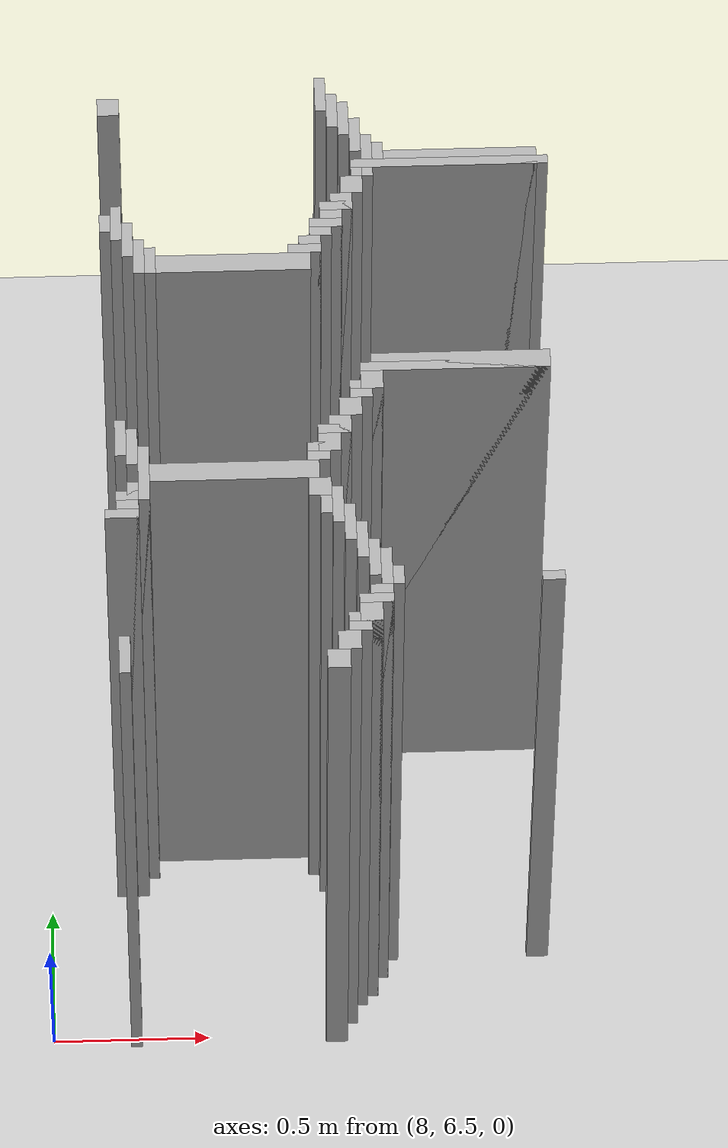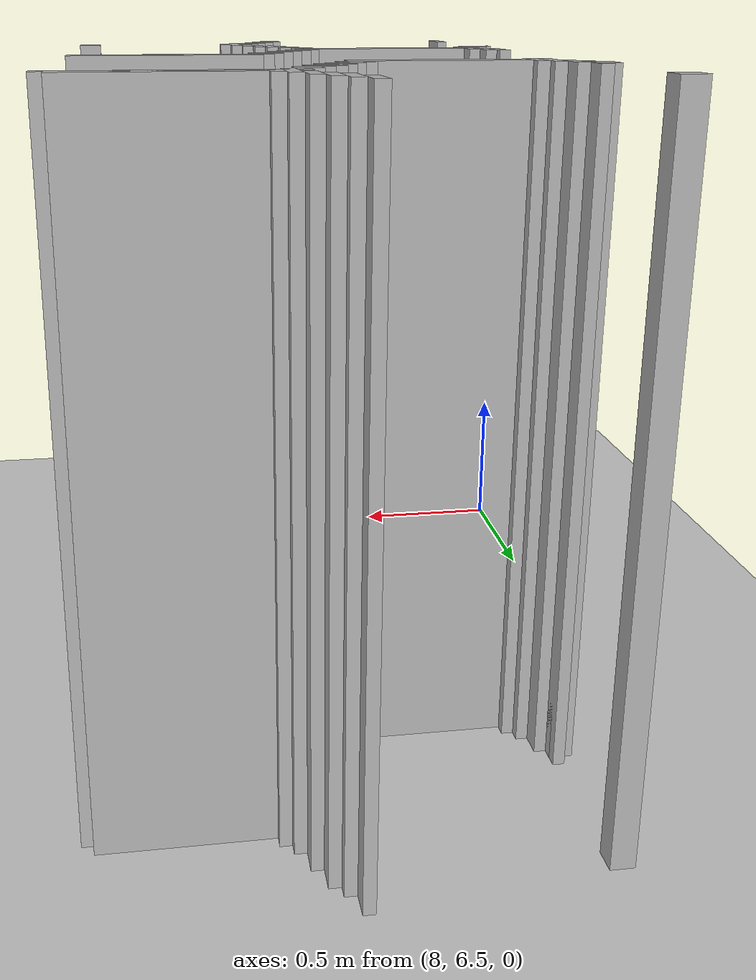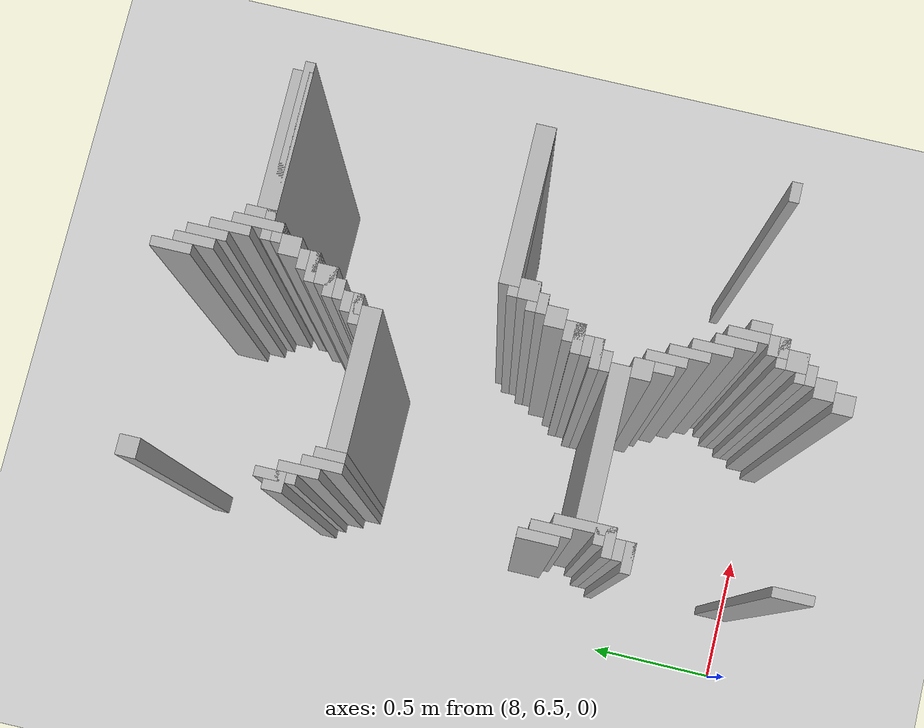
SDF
<sdf version="1.6">
 <world name="slam_world">
  <model name="ground_plane">
   <static>true</static>
   <link name="link">
    <collision name="collision">
     <geometry><plane><normal>0 0 1</normal><size>100 100</size></plane></geometry>
    </collision>
    <visual name="visual">
     <geometry><plane><normal>0 0 1</normal><size>100 100</size></plane></geometry>
     <material>
      <ambient>0.8 0.8 0.8 1</ambient>
      <diffuse>0.8 0.8 0.8 1</diffuse>
      <specular>0.8 0.8 0.8 1</specular>
     </material>
    </visual>
   </link>
  </model>
  <model name="wall_2867">
   <static>true</static>
   <pose>8.92691415313225 8.77030162412993 1.0 0 0 0</pose>
   <link name="link">
    <collision name="collision">
     <geometry><box><size>0.03480278422273782 0.13921113689095127 2.0</size></box></geometry>
    </collision>
    <visual name="visual">
     <geometry><box><size>0.03480278422273782 0.13921113689095127 2.0</size></box></geometry>
     <material><ambient>0.5 0.5 0.5 1</ambient><diffuse>0.7 0.7 0.7 1</diffuse></material>
    </visual>
   </link>
  </model>
  <model name="wall_2881">
   <static>true</static>
   <pose>8.248259860788863 8.735498839907192 1.0 0 0 0</pose>
   <link name="link">
    <collision name="collision">
     <geometry><box><size>0.06960556844547564 0.06960556844547564 2.0</size></box></geometry>
    </collision>
    <visual name="visual">
     <geometry><box><size>0.06960556844547564 0.06960556844547564 2.0</size></box></geometry>
     <material><ambient>0.5 0.5 0.5 1</ambient><diffuse>0.7 0.7 0.7 1</diffuse></material>
    </visual>
   </link>
  </model>
  <model name="wall_2882">
   <static>true</static>
   <pose>8.961716937354987 8.700696055684455 1.0 0 0 0</pose>
   <link name="link">
    <collision name="collision">
     <geometry><box><size>0.03480278422273782 0.13921113689095127 2.0</size></box></geometry>
    </collision>
    <visual name="visual">
     <geometry><box><size>0.03480278422273782 0.13921113689095127 2.0</size></box></geometry>
     <material><ambient>0.5 0.5 0.5 1</ambient><diffuse>0.7 0.7 0.7 1</diffuse></material>
    </visual>
   </link>
  </model>
  <model name="wall_2897">
   <static>true</static>
   <pose>8.996519721577727 8.665893271461716 1.0 0 0 0</pose>
   <link name="link">
    <collision name="collision">
     <geometry><box><size>0.03480278422273782 0.13921113689095127 2.0</size></box></geometry>
    </collision>
    <visual name="visual">
     <geometry><box><size>0.03480278422273782 0.13921113689095127 2.0</size></box></geometry>
     <material><ambient>0.5 0.5 0.5 1</ambient><diffuse>0.7 0.7 0.7 1</diffuse></material>
    </visual>
   </link>
  </model>
  <model name="wall_2923">
   <static>true</static>
   <pose>9.031322505800464 8.596287703016241 1.0 0 0 0</pose>
   <link name="link">
    <collision name="collision">
     <geometry><box><size>0.03480278422273782 0.13921113689095127 2.0</size></box></geometry>
    </collision>
    <visual name="visual">
     <geometry><box><size>0.03480278422273782 0.13921113689095127 2.0</size></box></geometry>
     <material><ambient>0.5 0.5 0.5 1</ambient><diffuse>0.7 0.7 0.7 1</diffuse></material>
    </visual>
   </link>
  </model>
  <model name="wall_2944">
   <static>true</static>
   <pose>9.066125290023201 8.509280742459396 1.0 0 0 0</pose>
   <link name="link">
    <collision name="collision">
     <geometry><box><size>0.03480278422273782 0.17401392111368907 2.0</size></box></geometry>
    </collision>
    <visual name="visual">
     <geometry><box><size>0.03480278422273782 0.17401392111368907 2.0</size></box></geometry>
     <material><ambient>0.5 0.5 0.5 1</ambient><diffuse>0.7 0.7 0.7 1</diffuse></material>
    </visual>
   </link>
  </model>
  <model name="wall_2959">
   <static>true</static>
   <pose>9.100928074245939 8.509280742459396 1.0 0 0 0</pose>
   <link name="link">
    <collision name="collision">
     <geometry><box><size>0.03480278422273782 0.10440835266821345 2.0</size></box></geometry>
    </collision>
    <visual name="visual">
     <geometry><box><size>0.03480278422273782 0.10440835266821345 2.0</size></box></geometry>
     <material><ambient>0.5 0.5 0.5 1</ambient><diffuse>0.7 0.7 0.7 1</diffuse></material>
    </visual>
   </link>
  </model>
  <model name="wall_2971">
   <static>true</static>
   <pose>9.361948955916473 8.491879350348027 1.0 0 0 0</pose>
   <link name="link">
    <collision name="collision">
     <geometry><box><size>0.4872389791183295 0.06960556844547564 2.0</size></box></geometry>
    </collision>
    <visual name="visual">
     <geometry><box><size>0.4872389791183295 0.06960556844547564 2.0</size></box></geometry>
     <material><ambient>0.5 0.5 0.5 1</ambient><diffuse>0.7 0.7 0.7 1</diffuse></material>
    </visual>
   </link>
  </model>
  <model name="wall_2981">
   <static>true</static>
   <pose>9.327146171693736 8.474477958236658 1.0 0 0 0</pose>
   <link name="link">
    <collision name="collision">
     <geometry><box><size>0.6264501160092807 0.03480278422273782 2.0</size></box></geometry>
    </collision>
    <visual name="visual">
     <geometry><box><size>0.6264501160092807 0.03480278422273782 2.0</size></box></geometry>
     <material><ambient>0.5 0.5 0.5 1</ambient><diffuse>0.7 0.7 0.7 1</diffuse></material>
    </visual>
   </link>
  </model>
  <model name="wall_2993">
   <static>true</static>
   <pose>9.048723897911833 8.43967517401392 1.0 0 0 0</pose>
   <link name="link">
    <collision name="collision">
     <geometry><box><size>0.06960556844547564 0.03480278422273782 2.0</size></box></geometry>
    </collision>
    <visual name="visual">
     <geometry><box><size>0.06960556844547564 0.03480278422273782 2.0</size></box></geometry>
     <material><ambient>0.5 0.5 0.5 1</ambient><diffuse>0.7 0.7 0.7 1</diffuse></material>
    </visual>
   </link>
  </model>
  <model name="wall_3006">
   <static>true</static>
   <pose>9.013921113689095 8.387470997679815 1.0 0 0 0</pose>
   <link name="link">
    <collision name="collision">
     <geometry><box><size>0.06960556844547564 0.06960556844547564 2.0</size></box></geometry>
    </collision>
    <visual name="visual">
     <geometry><box><size>0.06960556844547564 0.06960556844547564 2.0</size></box></geometry>
     <material><ambient>0.5 0.5 0.5 1</ambient><diffuse>0.7 0.7 0.7 1</diffuse></material>
    </visual>
   </link>
  </model>
  <model name="wall_3019">
   <static>true</static>
   <pose>8.979118329466356 8.317865429234338 1.0 0 0 0</pose>
   <link name="link">
    <collision name="collision">
     <geometry><box><size>0.06960556844547564 0.06960556844547564 2.0</size></box></geometry>
    </collision>
    <visual name="visual">
     <geometry><box><size>0.06960556844547564 0.06960556844547564 2.0</size></box></geometry>
     <material><ambient>0.5 0.5 0.5 1</ambient><diffuse>0.7 0.7 0.7 1</diffuse></material>
    </visual>
   </link>
  </model>
  <model name="wall_3031">
   <static>true</static>
   <pose>8.265661252900232 8.248259860788863 1.0 0 0 0</pose>
   <link name="link">
    <collision name="collision">
     <geometry><box><size>0.03480278422273782 0.13921113689095127 2.0</size></box></geometry>
    </collision>
    <visual name="visual">
     <geometry><box><size>0.03480278422273782 0.13921113689095127 2.0</size></box></geometry>
     <material><ambient>0.5 0.5 0.5 1</ambient><diffuse>0.7 0.7 0.7 1</diffuse></material>
    </visual>
   </link>
  </model>
  <model name="wall_3032">
   <static>true</static>
   <pose>8.961716937354987 8.30046403712297 1.0 0 0 0</pose>
   <link name="link">
    <collision name="collision">
     <geometry><box><size>0.10440835266821345 0.03480278422273782 2.0</size></box></geometry>
    </collision>
    <visual name="visual">
     <geometry><box><size>0.10440835266821345 0.03480278422273782 2.0</size></box></geometry>
     <material><ambient>0.5 0.5 0.5 1</ambient><diffuse>0.7 0.7 0.7 1</diffuse></material>
    </visual>
   </link>
  </model>
  <model name="wall_3043">
   <static>true</static>
   <pose>8.248259860788863 8.248259860788863 1.0 0 0 0</pose>
   <link name="link">
    <collision name="collision">
     <geometry><box><size>0.06960556844547564 0.06960556844547564 2.0</size></box></geometry>
    </collision>
    <visual name="visual">
     <geometry><box><size>0.06960556844547564 0.06960556844547564 2.0</size></box></geometry>
     <material><ambient>0.5 0.5 0.5 1</ambient><diffuse>0.7 0.7 0.7 1</diffuse></material>
    </visual>
   </link>
  </model>
  <model name="wall_3044">
   <static>true</static>
   <pose>8.944315545243619 8.248259860788863 1.0 0 0 0</pose>
   <link name="link">
    <collision name="collision">
     <geometry><box><size>0.06960556844547564 0.06960556844547564 2.0</size></box></geometry>
    </collision>
    <visual name="visual">
     <geometry><box><size>0.06960556844547564 0.06960556844547564 2.0</size></box></geometry>
     <material><ambient>0.5 0.5 0.5 1</ambient><diffuse>0.7 0.7 0.7 1</diffuse></material>
    </visual>
   </link>
  </model>
  <model name="wall_3055">
   <static>true</static>
   <pose>8.30046403712297 8.178654292343387 1.0 0 0 0</pose>
   <link name="link">
    <collision name="collision">
     <geometry><box><size>0.03480278422273782 0.13921113689095127 2.0</size></box></geometry>
    </collision>
    <visual name="visual">
     <geometry><box><size>0.03480278422273782 0.13921113689095127 2.0</size></box></geometry>
     <material><ambient>0.5 0.5 0.5 1</ambient><diffuse>0.7 0.7 0.7 1</diffuse></material>
    </visual>
   </link>
  </model>
  <model name="wall_3056">
   <static>true</static>
   <pose>8.92691415313225 8.230858468677495 1.0 0 0 0</pose>
   <link name="link">
    <collision name="collision">
     <geometry><box><size>0.10440835266821345 0.03480278422273782 2.0</size></box></geometry>
    </collision>
    <visual name="visual">
     <geometry><box><size>0.10440835266821345 0.03480278422273782 2.0</size></box></geometry>
     <material><ambient>0.5 0.5 0.5 1</ambient><diffuse>0.7 0.7 0.7 1</diffuse></material>
    </visual>
   </link>
  </model>
  <model name="wall_3067">
   <static>true</static>
   <pose>8.909512761020881 8.196055684454755 1.0 0 0 0</pose>
   <link name="link">
    <collision name="collision">
     <geometry><box><size>0.06960556844547564 0.03480278422273782 2.0</size></box></geometry>
    </collision>
    <visual name="visual">
     <geometry><box><size>0.06960556844547564 0.03480278422273782 2.0</size></box></geometry>
     <material><ambient>0.5 0.5 0.5 1</ambient><diffuse>0.7 0.7 0.7 1</diffuse></material>
    </visual>
   </link>
  </model>
  <model name="wall_3077">
   <static>true</static>
   <pose>8.335266821345707 8.109048723897912 1.0 0 0 0</pose>
   <link name="link">
    <collision name="collision">
     <geometry><box><size>0.03480278422273782 0.13921113689095127 2.0</size></box></geometry>
    </collision>
    <visual name="visual">
     <geometry><box><size>0.03480278422273782 0.13921113689095127 2.0</size></box></geometry>
     <material><ambient>0.5 0.5 0.5 1</ambient><diffuse>0.7 0.7 0.7 1</diffuse></material>
    </visual>
   </link>
  </model>
  <model name="wall_3078">
   <static>true</static>
   <pose>8.874709976798144 8.14385150812065 1.0 0 0 0</pose>
   <link name="link">
    <collision name="collision">
     <geometry><box><size>0.06960556844547564 0.06960556844547564 2.0</size></box></geometry>
    </collision>
    <visual name="visual">
     <geometry><box><size>0.06960556844547564 0.06960556844547564 2.0</size></box></geometry>
     <material><ambient>0.5 0.5 0.5 1</ambient><diffuse>0.7 0.7 0.7 1</diffuse></material>
    </visual>
   </link>
  </model>
  <model name="wall_3089">
   <static>true</static>
   <pose>8.370069605568444 8.091647331786543 1.0 0 0 0</pose>
   <link name="link">
    <collision name="collision">
     <geometry><box><size>0.03480278422273782 0.10440835266821345 2.0</size></box></geometry>
    </collision>
    <visual name="visual">
     <geometry><box><size>0.03480278422273782 0.10440835266821345 2.0</size></box></geometry>
     <material><ambient>0.5 0.5 0.5 1</ambient><diffuse>0.7 0.7 0.7 1</diffuse></material>
    </visual>
   </link>
  </model>
  <model name="wall_3090">
   <static>true</static>
   <pose>8.857308584686775 8.12645011600928 1.0 0 0 0</pose>
   <link name="link">
    <collision name="collision">
     <geometry><box><size>0.10440835266821345 0.03480278422273782 2.0</size></box></geometry>
    </collision>
    <visual name="visual">
     <geometry><box><size>0.10440835266821345 0.03480278422273782 2.0</size></box></geometry>
     <material><ambient>0.5 0.5 0.5 1</ambient><diffuse>0.7 0.7 0.7 1</diffuse></material>
    </visual>
   </link>
  </model>
  <model name="wall_3102">
   <static>true</static>
   <pose>8.631090487238978 8.074245939675174 1.0 0 0 0</pose>
   <link name="link">
    <collision name="collision">
     <geometry><box><size>0.4872389791183295 0.06960556844547564 2.0</size></box></geometry>
    </collision>
    <visual name="visual">
     <geometry><box><size>0.4872389791183295 0.06960556844547564 2.0</size></box></geometry>
     <material><ambient>0.5 0.5 0.5 1</ambient><diffuse>0.7 0.7 0.7 1</diffuse></material>
    </visual>
   </link>
  </model>
  <model name="wall_3186">
   <static>true</static>
   <pose>9.327146171693736 7.65661252900232 1.0 0 0 0</pose>
   <link name="link">
    <collision name="collision">
     <geometry><box><size>0.5568445475638051 0.06960556844547564 2.0</size></box></geometry>
    </collision>
    <visual name="visual">
     <geometry><box><size>0.5568445475638051 0.06960556844547564 2.0</size></box></geometry>
     <material><ambient>0.5 0.5 0.5 1</ambient><diffuse>0.7 0.7 0.7 1</diffuse></material>
    </visual>
   </link>
  </model>
  <model name="wall_3200">
   <static>true</static>
   <pose>9.309744779582367 7.6392111368909505 1.0 0 0 0</pose>
   <link name="link">
    <collision name="collision">
     <geometry><box><size>0.5916473317865429 0.03480278422273782 2.0</size></box></geometry>
    </collision>
    <visual name="visual">
     <geometry><box><size>0.5916473317865429 0.03480278422273782 2.0</size></box></geometry>
     <material><ambient>0.5 0.5 0.5 1</ambient><diffuse>0.7 0.7 0.7 1</diffuse></material>
    </visual>
   </link>
  </model>
  <model name="wall_3213">
   <static>true</static>
   <pose>9.048723897911833 7.587006960556844 1.0 0 0 0</pose>
   <link name="link">
    <collision name="collision">
     <geometry><box><size>0.06960556844547564 0.06960556844547564 2.0</size></box></geometry>
    </collision>
    <visual name="visual">
     <geometry><box><size>0.06960556844547564 0.06960556844547564 2.0</size></box></geometry>
     <material><ambient>0.5 0.5 0.5 1</ambient><diffuse>0.7 0.7 0.7 1</diffuse></material>
    </visual>
   </link>
  </model>
  <model name="wall_3226">
   <static>true</static>
   <pose>9.031322505800464 7.569605568445476 1.0 0 0 0</pose>
   <link name="link">
    <collision name="collision">
     <geometry><box><size>0.10440835266821345 0.03480278422273782 2.0</size></box></geometry>
    </collision>
    <visual name="visual">
     <geometry><box><size>0.10440835266821345 0.03480278422273782 2.0</size></box></geometry>
     <material><ambient>0.5 0.5 0.5 1</ambient><diffuse>0.7 0.7 0.7 1</diffuse></material>
    </visual>
   </link>
  </model>
  <model name="wall_3236">
   <static>true</static>
   <pose>9.013921113689095 7.534802784222737 1.0 0 0 0</pose>
   <link name="link">
    <collision name="collision">
     <geometry><box><size>0.06960556844547564 0.03480278422273782 2.0</size></box></geometry>
    </collision>
    <visual name="visual">
     <geometry><box><size>0.06960556844547564 0.03480278422273782 2.0</size></box></geometry>
     <material><ambient>0.5 0.5 0.5 1</ambient><diffuse>0.7 0.7 0.7 1</diffuse></material>
    </visual>
   </link>
  </model>
  <model name="wall_3248">
   <static>true</static>
   <pose>8.979118329466356 7.48259860788863 1.0 0 0 0</pose>
   <link name="link">
    <collision name="collision">
     <geometry><box><size>0.06960556844547564 0.06960556844547564 2.0</size></box></geometry>
    </collision>
    <visual name="visual">
     <geometry><box><size>0.06960556844547564 0.06960556844547564 2.0</size></box></geometry>
     <material><ambient>0.5 0.5 0.5 1</ambient><diffuse>0.7 0.7 0.7 1</diffuse></material>
    </visual>
   </link>
  </model>
  <model name="wall_3260">
   <static>true</static>
   <pose>8.265661252900232 7.378190255220417 1.0 0 0 0</pose>
   <link name="link">
    <collision name="collision">
     <geometry><box><size>0.03480278422273782 0.13921113689095127 2.0</size></box></geometry>
    </collision>
    <visual name="visual">
     <geometry><box><size>0.03480278422273782 0.13921113689095127 2.0</size></box></geometry>
     <material><ambient>0.5 0.5 0.5 1</ambient><diffuse>0.7 0.7 0.7 1</diffuse></material>
    </visual>
   </link>
  </model>
  <model name="wall_3261">
   <static>true</static>
   <pose>8.944315545243619 7.412993039443156 1.0 0 0 0</pose>
   <link name="link">
    <collision name="collision">
     <geometry><box><size>0.06960556844547564 0.06960556844547564 2.0</size></box></geometry>
    </collision>
    <visual name="visual">
     <geometry><box><size>0.06960556844547564 0.06960556844547564 2.0</size></box></geometry>
     <material><ambient>0.5 0.5 0.5 1</ambient><diffuse>0.7 0.7 0.7 1</diffuse></material>
    </visual>
   </link>
  </model>
  <model name="wall_3273">
   <static>true</static>
   <pose>8.30046403712297 7.34338747099768 1.0 0 0 0</pose>
   <link name="link">
    <collision name="collision">
     <geometry><box><size>0.03480278422273782 0.13921113689095127 2.0</size></box></geometry>
    </collision>
    <visual name="visual">
     <geometry><box><size>0.03480278422273782 0.13921113689095127 2.0</size></box></geometry>
     <material><ambient>0.5 0.5 0.5 1</ambient><diffuse>0.7 0.7 0.7 1</diffuse></material>
    </visual>
   </link>
  </model>
  <model name="wall_3274">
   <static>true</static>
   <pose>8.92691415313225 7.395591647331786 1.0 0 0 0</pose>
   <link name="link">
    <collision name="collision">
     <geometry><box><size>0.10440835266821345 0.03480278422273782 2.0</size></box></geometry>
    </collision>
    <visual name="visual">
     <geometry><box><size>0.10440835266821345 0.03480278422273782 2.0</size></box></geometry>
     <material><ambient>0.5 0.5 0.5 1</ambient><diffuse>0.7 0.7 0.7 1</diffuse></material>
    </visual>
   </link>
  </model>
  <model name="wall_3282">
   <static>true</static>
   <pose>8.909512761020881 7.34338747099768 1.0 0 0 0</pose>
   <link name="link">
    <collision name="collision">
     <geometry><box><size>0.06960556844547564 0.06960556844547564 2.0</size></box></geometry>
    </collision>
    <visual name="visual">
     <geometry><box><size>0.06960556844547564 0.06960556844547564 2.0</size></box></geometry>
     <material><ambient>0.5 0.5 0.5 1</ambient><diffuse>0.7 0.7 0.7 1</diffuse></material>
    </visual>
   </link>
  </model>
  <model name="wall_3293">
   <static>true</static>
   <pose>8.335266821345707 7.238979118329466 1.0 0 0 0</pose>
   <link name="link">
    <collision name="collision">
     <geometry><box><size>0.03480278422273782 0.2088167053364269 2.0</size></box></geometry>
    </collision>
    <visual name="visual">
     <geometry><box><size>0.03480278422273782 0.2088167053364269 2.0</size></box></geometry>
     <material><ambient>0.5 0.5 0.5 1</ambient><diffuse>0.7 0.7 0.7 1</diffuse></material>
    </visual>
   </link>
  </model>
  <model name="wall_3294">
   <static>true</static>
   <pose>8.892111368909513 7.32598607888631 1.0 0 0 0</pose>
   <link name="link">
    <collision name="collision">
     <geometry><box><size>0.10440835266821345 0.03480278422273782 2.0</size></box></geometry>
    </collision>
    <visual name="visual">
     <geometry><box><size>0.10440835266821345 0.03480278422273782 2.0</size></box></geometry>
     <material><ambient>0.5 0.5 0.5 1</ambient><diffuse>0.7 0.7 0.7 1</diffuse></material>
    </visual>
   </link>
  </model>
  <model name="wall_3302">
   <static>true</static>
   <pose>8.874709976798144 7.291183294663573 1.0 0 0 0</pose>
   <link name="link">
    <collision name="collision">
     <geometry><box><size>0.06960556844547564 0.03480278422273782 2.0</size></box></geometry>
    </collision>
    <visual name="visual">
     <geometry><box><size>0.06960556844547564 0.03480278422273782 2.0</size></box></geometry>
     <material><ambient>0.5 0.5 0.5 1</ambient><diffuse>0.7 0.7 0.7 1</diffuse></material>
    </visual>
   </link>
  </model>
  <model name="wall_3313">
   <static>true</static>
   <pose>8.61368909512761 7.238979118329466 1.0 0 0 0</pose>
   <link name="link">
    <collision name="collision">
     <geometry><box><size>0.5220417633410672 0.06960556844547564 2.0</size></box></geometry>
    </collision>
    <visual name="visual">
     <geometry><box><size>0.5220417633410672 0.06960556844547564 2.0</size></box></geometry>
     <material><ambient>0.5 0.5 0.5 1</ambient><diffuse>0.7 0.7 0.7 1</diffuse></material>
    </visual>
   </link>
  </model>
  <model name="wall_3324">
   <static>true</static>
   <pose>8.317865429234338 7.16937354988399 1.0 0 0 0</pose>
   <link name="link">
    <collision name="collision">
     <geometry><box><size>0.06960556844547564 0.06960556844547564 2.0</size></box></geometry>
    </collision>
    <visual name="visual">
     <geometry><box><size>0.06960556844547564 0.06960556844547564 2.0</size></box></geometry>
     <material><ambient>0.5 0.5 0.5 1</ambient><diffuse>0.7 0.7 0.7 1</diffuse></material>
    </visual>
   </link>
  </model>
  <model name="wall_3325">
   <static>true</static>
   <pose>8.874709976798144 7.16937354988399 1.0 0 0 0</pose>
   <link name="link">
    <collision name="collision">
     <geometry><box><size>0.06960556844547564 0.06960556844547564 2.0</size></box></geometry>
    </collision>
    <visual name="visual">
     <geometry><box><size>0.06960556844547564 0.06960556844547564 2.0</size></box></geometry>
     <material><ambient>0.5 0.5 0.5 1</ambient><diffuse>0.7 0.7 0.7 1</diffuse></material>
    </visual>
   </link>
  </model>
  <model name="wall_3336">
   <static>true</static>
   <pose>8.30046403712297 7.151972157772621 1.0 0 0 0</pose>
   <link name="link">
    <collision name="collision">
     <geometry><box><size>0.10440835266821345 0.03480278422273782 2.0</size></box></geometry>
    </collision>
    <visual name="visual">
     <geometry><box><size>0.10440835266821345 0.03480278422273782 2.0</size></box></geometry>
     <material><ambient>0.5 0.5 0.5 1</ambient><diffuse>0.7 0.7 0.7 1</diffuse></material>
    </visual>
   </link>
  </model>
  <model name="wall_3337">
   <static>true</static>
   <pose>8.92691415313225 7.099767981438514 1.0 0 0 0</pose>
   <link name="link">
    <collision name="collision">
     <geometry><box><size>0.03480278422273782 0.13921113689095127 2.0</size></box></geometry>
    </collision>
    <visual name="visual">
     <geometry><box><size>0.03480278422273782 0.13921113689095127 2.0</size></box></geometry>
     <material><ambient>0.5 0.5 0.5 1</ambient><diffuse>0.7 0.7 0.7 1</diffuse></material>
    </visual>
   </link>
  </model>
  <model name="wall_3348">
   <static>true</static>
   <pose>8.2830626450116 7.099767981438514 1.0 0 0 0</pose>
   <link name="link">
    <collision name="collision">
     <geometry><box><size>0.06960556844547564 0.06960556844547564 2.0</size></box></geometry>
    </collision>
    <visual name="visual">
     <geometry><box><size>0.06960556844547564 0.06960556844547564 2.0</size></box></geometry>
     <material><ambient>0.5 0.5 0.5 1</ambient><diffuse>0.7 0.7 0.7 1</diffuse></material>
    </visual>
   </link>
  </model>
  <model name="wall_3349">
   <static>true</static>
   <pose>8.909512761020881 7.099767981438514 1.0 0 0 0</pose>
   <link name="link">
    <collision name="collision">
     <geometry><box><size>0.06960556844547564 0.06960556844547564 2.0</size></box></geometry>
    </collision>
    <visual name="visual">
     <geometry><box><size>0.06960556844547564 0.06960556844547564 2.0</size></box></geometry>
     <material><ambient>0.5 0.5 0.5 1</ambient><diffuse>0.7 0.7 0.7 1</diffuse></material>
    </visual>
   </link>
  </model>
  <model name="wall_3360">
   <static>true</static>
   <pose>8.265661252900232 7.082366589327146 1.0 0 0 0</pose>
   <link name="link">
    <collision name="collision">
     <geometry><box><size>0.10440835266821345 0.03480278422273782 2.0</size></box></geometry>
    </collision>
    <visual name="visual">
     <geometry><box><size>0.10440835266821345 0.03480278422273782 2.0</size></box></geometry>
     <material><ambient>0.5 0.5 0.5 1</ambient><diffuse>0.7 0.7 0.7 1</diffuse></material>
    </visual>
   </link>
  </model>
  <model name="wall_3361">
   <static>true</static>
   <pose>8.961716937354987 7.03016241299304 1.0 0 0 0</pose>
   <link name="link">
    <collision name="collision">
     <geometry><box><size>0.03480278422273782 0.13921113689095127 2.0</size></box></geometry>
    </collision>
    <visual name="visual">
     <geometry><box><size>0.03480278422273782 0.13921113689095127 2.0</size></box></geometry>
     <material><ambient>0.5 0.5 0.5 1</ambient><diffuse>0.7 0.7 0.7 1</diffuse></material>
    </visual>
   </link>
  </model>
  <model name="wall_3378">
   <static>true</static>
   <pose>8.996519721577727 6.960556844547564 1.0 0 0 0</pose>
   <link name="link">
    <collision name="collision">
     <geometry><box><size>0.03480278422273782 0.13921113689095127 2.0</size></box></geometry>
    </collision>
    <visual name="visual">
     <geometry><box><size>0.03480278422273782 0.13921113689095127 2.0</size></box></geometry>
     <material><ambient>0.5 0.5 0.5 1</ambient><diffuse>0.7 0.7 0.7 1</diffuse></material>
    </visual>
   </link>
  </model>
  <model name="wall_3395">
   <static>true</static>
   <pose>9.031322505800464 6.890951276102088 1.0 0 0 0</pose>
   <link name="link">
    <collision name="collision">
     <geometry><box><size>0.03480278422273782 0.13921113689095127 2.0</size></box></geometry>
    </collision>
    <visual name="visual">
     <geometry><box><size>0.03480278422273782 0.13921113689095127 2.0</size></box></geometry>
     <material><ambient>0.5 0.5 0.5 1</ambient><diffuse>0.7 0.7 0.7 1</diffuse></material>
    </visual>
   </link>
  </model>
  <model name="wall_3407">
   <static>true</static>
   <pose>9.066125290023201 6.821345707656612 1.0 0 0 0</pose>
   <link name="link">
    <collision name="collision">
     <geometry><box><size>0.03480278422273782 0.2088167053364269 2.0</size></box></geometry>
    </collision>
    <visual name="visual">
     <geometry><box><size>0.03480278422273782 0.2088167053364269 2.0</size></box></geometry>
     <material><ambient>0.5 0.5 0.5 1</ambient><diffuse>0.7 0.7 0.7 1</diffuse></material>
    </visual>
   </link>
  </model>
  <model name="wall_3424">
   <static>true</static>
   <pose>9.100928074245939 6.821345707656612 1.0 0 0 0</pose>
   <link name="link">
    <collision name="collision">
     <geometry><box><size>0.03480278422273782 0.06960556844547564 2.0</size></box></geometry>
    </collision>
    <visual name="visual">
     <geometry><box><size>0.03480278422273782 0.06960556844547564 2.0</size></box></geometry>
     <material><ambient>0.5 0.5 0.5 1</ambient><diffuse>0.7 0.7 0.7 1</diffuse></material>
    </visual>
   </link>
  </model>
  <model name="wall_3434">
   <static>true</static>
   <pose>9.5707656612529 6.803944315545244 1.0 0 0 0</pose>
   <link name="link">
    <collision name="collision">
     <geometry><box><size>0.06960556844547564 0.03480278422273782 2.0</size></box></geometry>
    </collision>
    <visual name="visual">
     <geometry><box><size>0.06960556844547564 0.03480278422273782 2.0</size></box></geometry>
     <material><ambient>0.5 0.5 0.5 1</ambient><diffuse>0.7 0.7 0.7 1</diffuse></material>
    </visual>
   </link>
  </model>
  <model name="wall_3448">
   <static>true</static>
   <pose>9.048723897911833 6.751740139211137 1.0 0 0 0</pose>
   <link name="link">
    <collision name="collision">
     <geometry><box><size>0.06960556844547564 0.06960556844547564 2.0</size></box></geometry>
    </collision>
    <visual name="visual">
     <geometry><box><size>0.06960556844547564 0.06960556844547564 2.0</size></box></geometry>
     <material><ambient>0.5 0.5 0.5 1</ambient><diffuse>0.7 0.7 0.7 1</diffuse></material>
    </visual>
   </link>
  </model>
  <model name="wall_3468">
   <static>true</static>
   <pose>9.031322505800464 6.734338747099768 1.0 0 0 0</pose>
   <link name="link">
    <collision name="collision">
     <geometry><box><size>0.10440835266821345 0.03480278422273782 2.0</size></box></geometry>
    </collision>
    <visual name="visual">
     <geometry><box><size>0.10440835266821345 0.03480278422273782 2.0</size></box></geometry>
     <material><ambient>0.5 0.5 0.5 1</ambient><diffuse>0.7 0.7 0.7 1</diffuse></material>
    </visual>
   </link>
  </model>
  <model name="wall_3488">
   <static>true</static>
   <pose>9.013921113689095 6.682134570765661 1.0 0 0 0</pose>
   <link name="link">
    <collision name="collision">
     <geometry><box><size>0.06960556844547564 0.06960556844547564 2.0</size></box></geometry>
    </collision>
    <visual name="visual">
     <geometry><box><size>0.06960556844547564 0.06960556844547564 2.0</size></box></geometry>
     <material><ambient>0.5 0.5 0.5 1</ambient><diffuse>0.7 0.7 0.7 1</diffuse></material>
    </visual>
   </link>
  </model>
  <model name="wall_3508">
   <static>true</static>
   <pose>8.996519721577727 6.664733178654292 1.0 0 0 0</pose>
   <link name="link">
    <collision name="collision">
     <geometry><box><size>0.10440835266821345 0.03480278422273782 2.0</size></box></geometry>
    </collision>
    <visual name="visual">
     <geometry><box><size>0.10440835266821345 0.03480278422273782 2.0</size></box></geometry>
     <material><ambient>0.5 0.5 0.5 1</ambient><diffuse>0.7 0.7 0.7 1</diffuse></material>
    </visual>
   </link>
  </model>
  <model name="wall_3522">
   <static>true</static>
   <pose>8.979118329466356 6.629930394431554 1.0 0 0 0</pose>
   <link name="link">
    <collision name="collision">
     <geometry><box><size>0.06960556844547564 0.03480278422273782 2.0</size></box></geometry>
    </collision>
    <visual name="visual">
     <geometry><box><size>0.06960556844547564 0.03480278422273782 2.0</size></box></geometry>
     <material><ambient>0.5 0.5 0.5 1</ambient><diffuse>0.7 0.7 0.7 1</diffuse></material>
    </visual>
   </link>
  </model>
  <model name="wall_3537">
   <static>true</static>
   <pose>8.265661252900232 6.5429234338747095 1.0 0 0 0</pose>
   <link name="link">
    <collision name="collision">
     <geometry><box><size>0.03480278422273782 0.13921113689095127 2.0</size></box></geometry>
    </collision>
    <visual name="visual">
     <geometry><box><size>0.03480278422273782 0.13921113689095127 2.0</size></box></geometry>
     <material><ambient>0.5 0.5 0.5 1</ambient><diffuse>0.7 0.7 0.7 1</diffuse></material>
    </visual>
   </link>
  </model>
  <model name="wall_3538">
   <static>true</static>
   <pose>8.944315545243619 6.577726218097448 1.0 0 0 0</pose>
   <link name="link">
    <collision name="collision">
     <geometry><box><size>0.06960556844547564 0.06960556844547564 2.0</size></box></geometry>
    </collision>
    <visual name="visual">
     <geometry><box><size>0.06960556844547564 0.06960556844547564 2.0</size></box></geometry>
     <material><ambient>0.5 0.5 0.5 1</ambient><diffuse>0.7 0.7 0.7 1</diffuse></material>
    </visual>
   </link>
  </model>
  <model name="wall_3558">
   <static>true</static>
   <pose>8.909512761020881 6.508120649651972 1.0 0 0 0</pose>
   <link name="link">
    <collision name="collision">
     <geometry><box><size>0.06960556844547564 0.06960556844547564 2.0</size></box></geometry>
    </collision>
    <visual name="visual">
     <geometry><box><size>0.06960556844547564 0.06960556844547564 2.0</size></box></geometry>
     <material><ambient>0.5 0.5 0.5 1</ambient><diffuse>0.7 0.7 0.7 1</diffuse></material>
    </visual>
   </link>
  </model>
 </world>
</sdf>
